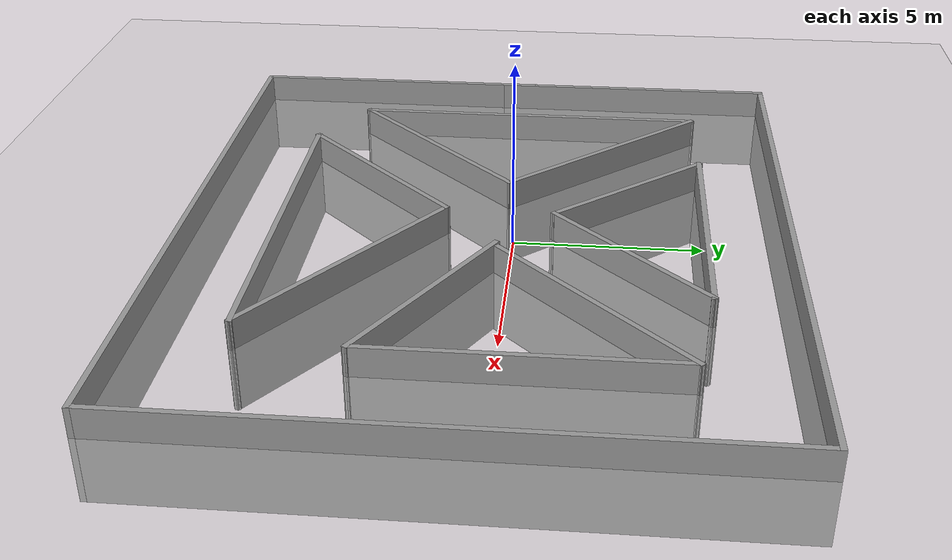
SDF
<sdf version="1.7">
 <world name="default">
  <light name="sun" type="directional">
   <pose>0 0 10 0 -0 0</pose>
   <diffuse>0.8 0.8 0.8 1</diffuse>
   <specular>0.2 0.2 0.2 1</specular>
   <attenuation>
    <range>1000</range>
    <constant>0.9</constant>
    <linear>0.01</linear>
    <quadratic>0.001</quadratic>
   </attenuation>
   <direction>-0.5 0.1 -0.9</direction>
   <spot><inner_angle>0</inner_angle><outer_angle>0</outer_angle><falloff>0</falloff></spot>
  </light>
  <model name="ground_plane">
   <static>1</static>
   <link name="link">
    <collision name="collision">
     <geometry><plane><normal>0 0 1</normal><size>100 100</size></plane></geometry>
     <surface>
      <contact><collide_bitmask>65535</collide_bitmask></contact>
      <friction><ode><mu>100</mu><mu2>50</mu2></ode></friction>
     </surface>
    </collision>
    <visual name="visual">
     <cast_shadows>0</cast_shadows>
     <geometry><plane><normal>0 0 1</normal><size>100 100</size></plane></geometry>
     <material>
      <script><uri>file://media/materials/scripts/gazebo.material</uri><name>Gazebo/Grey</name></script>
     </material>
    </visual>
   </link>
  </model>
  <gravity>0 0 -9.8</gravity>
  <magnetic_field>6e-06 2.3e-05 -4.2e-05</magnetic_field>
  <atmosphere type="adiabatic"/>
  <physics type="ode">
   <max_step_size>0.001</max_step_size>
   <real_time_factor>1</real_time_factor>
   <real_time_update_rate>1000</real_time_update_rate>
  </physics>
  <scene><ambient>0.4 0.4 0.4 1</ambient><background>0.7 0.7 0.7 1</background><shadows>1</shadows></scene>
  <spherical_coordinates>
   <surface_model>EARTH_WGS84</surface_model>
   <latitude_deg>0</latitude_deg>
   <longitude_deg>0</longitude_deg>
   <elevation>0</elevation>
   <heading_deg>0</heading_deg>
  </spherical_coordinates>
  <model name="intersection">
   <pose>-0.004913 -0.704715 -1.73628 0 -0 0</pose>
   <link name="Wall_10">
    <collision name="Wall_10_Collision">
     <geometry><box><size>10 0.15 2.5</size></box></geometry>
     <pose>0 0 1.25 0 -0 0</pose>
    </collision>
    <visual name="Wall_10_Visual">
     <pose>0 0 1.25 0 -0 0</pose>
     <geometry><box><size>10 0.15 2.5</size></box></geometry>
     <material>
      <script><uri>file://media/materials/scripts/gazebo.material</uri><name>Gazebo/Grey</name></script>
      <ambient>1 1 1 1</ambient>
     </material>
     <meta><layer>0</layer></meta>
    </visual>
    <pose>-6.74079 0.702079 0 0 -0 -1.5708</pose>
   </link>
   <link name="Wall_11">
    <collision name="Wall_11_Collision">
     <geometry><box><size>6.75 0.15 2.5</size></box></geometry>
     <pose>0 0 1.25 0 -0 0</pose>
    </collision>
    <visual name="Wall_11_Visual">
     <pose>0 0 1.25 0 -0 0</pose>
     <geometry><box><size>6.75 0.15 2.5</size></box></geometry>
     <material>
      <script><uri>file://media/materials/scripts/gazebo.material</uri><name>Gazebo/Grey</name></script>
      <ambient>1 1 1 1</ambient>
     </material>
     <meta><layer>0</layer></meta>
    </visual>
    <pose>-4.40733 -1.88947 0 0 -0 0.785398</pose>
   </link>
   <link name="Wall_12">
    <collision name="Wall_12_Collision">
     <geometry><box><size>7.12456 0.15 2.5</size></box></geometry>
     <pose>0 0 1.25 0 -0 0</pose>
    </collision>
    <visual name="Wall_12_Visual">
     <pose>0 0 1.25 0 -0 0</pose>
     <geometry><box><size>7.12456 0.15 2.5</size></box></geometry>
     <material>
      <script><uri>file://media/materials/scripts/gazebo.material</uri><name>Gazebo/Grey</name></script>
      <ambient>1 1 1 1</ambient>
     </material>
     <meta><layer>0</layer></meta>
    </visual>
    <pose>-4.40733 3.03553 0 0 -0 2.30384</pose>
   </link>
   <link name="Wall_18">
    <collision name="Wall_18_Collision">
     <geometry><box><size>6.25 0.15 2.5</size></box></geometry>
     <pose>0 0 1.25 0 -0 0</pose>
    </collision>
    <visual name="Wall_18_Visual">
     <pose>0 0 1.25 0 -0 0</pose>
     <geometry><box><size>6.25 0.15 2.5</size></box></geometry>
     <material>
      <script><uri>file://media/materials/scripts/gazebo.material</uri><name>Gazebo/Grey</name></script>
      <ambient>1 1 1 1</ambient>
     </material>
     <meta><layer>0</layer></meta>
    </visual>
    <pose>-2.59808 -3.28738 0 0 -0 -2.35619</pose>
   </link>
   <link name="Wall_19">
    <collision name="Wall_19_Collision">
     <geometry><box><size>10.5 0.15 2.5</size></box></geometry>
     <pose>0 0 1.25 0 -0 0</pose>
    </collision>
    <visual name="Wall_19_Visual">
     <pose>0 0 1.25 0 -0 0</pose>
     <geometry><box><size>10.5 0.15 2.5</size></box></geometry>
     <material>
      <script><uri>file://media/materials/scripts/gazebo.material</uri><name>Gazebo/Grey</name></script>
      <ambient>1 1 1 1</ambient>
     </material>
     <meta><layer>0</layer></meta>
    </visual>
    <pose>0.420249 -5.44406 0 0 -0 0</pose>
   </link>
   <link name="Wall_2">
    <collision name="Wall_2_Collision">
     <geometry><box><size>8.25 0.15 2.5</size></box></geometry>
     <pose>0 0 1.25 0 -0 0</pose>
    </collision>
    <visual name="Wall_2_Visual">
     <pose>0 0 1.25 0 -0 0</pose>
     <geometry><box><size>8.25 0.15 2.5</size></box></geometry>
     <material>
      <script><uri>file://media/materials/scripts/gazebo.material</uri><name>Gazebo/Grey</name></script>
      <ambient>1 1 1 1</ambient>
     </material>
     <meta><layer>0</layer></meta>
    </visual>
    <pose>-9.175 3.875 0 0 -0 1.5708</pose>
   </link>
   <link name="Wall_20">
    <collision name="Wall_20_Collision">
     <geometry><box><size>7.56931 0.15 2.5</size></box></geometry>
     <pose>0 0 1.25 0 -0 0</pose>
    </collision>
    <visual name="Wall_20_Visual">
     <pose>0 0 1.25 0 -0 0</pose>
     <geometry><box><size>7.56931 0.15 2.5</size></box></geometry>
     <material>
      <script><uri>file://media/materials/scripts/gazebo.material</uri><name>Gazebo/Grey</name></script>
      <ambient>1 1 1 1</ambient>
     </material>
     <meta><layer>0</layer></meta>
    </visual>
    <pose>2.57693 -3.28738 0 0 -0 2.52118</pose>
   </link>
   <link name="Wall_26">
    <collision name="Wall_26_Collision">
     <geometry><box><size>6 0.15 2.5</size></box></geometry>
     <pose>0 0 1.25 0 -0 0</pose>
    </collision>
    <visual name="Wall_26_Visual">
     <pose>0 0 1.25 0 -0 0</pose>
     <geometry><box><size>6 0.15 2.5</size></box></geometry>
     <material>
      <script><uri>file://media/materials/scripts/gazebo.material</uri><name>Gazebo/Grey</name></script>
      <ambient>1 1 1 1</ambient>
     </material>
     <meta><layer>0</layer></meta>
    </visual>
    <pose>3.8899 -1.11422 0 0 -0 -0.523599</pose>
   </link>
   <link name="Wall_27">
    <collision name="Wall_27_Collision">
     <geometry><box><size>8 0.15 2.5</size></box></geometry>
     <pose>0 0 1.25 0 -0 0</pose>
    </collision>
    <visual name="Wall_27_Visual">
     <pose>0 0 1.25 0 -0 0</pose>
     <geometry><box><size>8 0.15 2.5</size></box></geometry>
     <material>
      <script><uri>file://media/materials/scripts/gazebo.material</uri><name>Gazebo/Grey</name></script>
      <ambient>1 1 1 1</ambient>
     </material>
     <meta><layer>0</layer></meta>
    </visual>
    <pose>6.42303 1.34828 0 0 -0 1.5708</pose>
   </link>
   <link name="Wall_28">
    <collision name="Wall_28_Collision">
     <geometry><box><size>7 0.15 2.5</size></box></geometry>
     <pose>0 0 1.25 0 -0 0</pose>
    </collision>
    <visual name="Wall_28_Visual">
     <pose>0 0 1.25 0 -0 0</pose>
     <geometry><box><size>7 0.15 2.5</size></box></geometry>
     <material>
      <script><uri>file://media/materials/scripts/gazebo.material</uri><name>Gazebo/Grey</name></script>
      <ambient>1 1 1 1</ambient>
     </material>
     <meta><layer>0</layer></meta>
    </visual>
    <pose>4.00119 2.85144 0 0 -0 -2.35619</pose>
   </link>
   <link name="Wall_3">
    <collision name="Wall_3_Collision">
     <geometry><box><size>18.5 0.15 2.5</size></box></geometry>
     <pose>0 0 1.25 0 -0 0</pose>
    </collision>
    <visual name="Wall_3_Visual">
     <pose>0 0 1.25 0 -0 0</pose>
     <geometry><box><size>18.5 0.15 2.5</size></box></geometry>
     <material>
      <script><uri>file://media/materials/scripts/gazebo.material</uri><name>Gazebo/Grey</name></script>
      <ambient>1 1 1 1</ambient>
     </material>
     <meta><layer>0</layer></meta>
    </visual>
    <pose>0 7.925 0 0 -0 0</pose>
   </link>
   <link name="Wall_31">
    <collision name="Wall_31_Collision">
     <geometry><box><size>7.5 0.15 2.5</size></box></geometry>
     <pose>0 0 1.25 0 -0 0</pose>
    </collision>
    <visual name="Wall_31_Visual">
     <pose>0 0 1.25 0 -0 0</pose>
     <geometry><box><size>7.5 0.15 2.5</size></box></geometry>
     <material>
      <script><uri>file://media/materials/scripts/gazebo.material</uri><name>Gazebo/Grey</name></script>
      <ambient>1 1 1 1</ambient>
     </material>
     <meta><layer>0</layer></meta>
    </visual>
    <pose>-0.065623 5.72887 0 0 -0 0</pose>
   </link>
   <link name="Wall_32">
    <collision name="Wall_32_Collision">
     <geometry><box><size>5.75 0.15 2.5</size></box></geometry>
     <pose>0 0 1.25 0 -0 0</pose>
    </collision>
    <visual name="Wall_32_Visual">
     <pose>0 0 1.25 0 -0 0</pose>
     <geometry><box><size>5.75 0.15 2.5</size></box></geometry>
     <material>
      <script><uri>file://media/materials/scripts/gazebo.material</uri><name>Gazebo/Grey</name></script>
      <ambient>1 1 1 1</ambient>
     </material>
     <meta><layer>0</layer></meta>
    </visual>
    <pose>1.62948 3.74897 0 0 -0 -2.35619</pose>
   </link>
   <link name="Wall_33">
    <collision name="Wall_33_Collision">
     <geometry><box><size>5.36282 0.15 2.5</size></box></geometry>
     <pose>0 0 1.25 0 -0 0</pose>
    </collision>
    <visual name="Wall_33_Visual">
     <pose>0 0 1.25 0 -0 0</pose>
     <geometry><box><size>5.36282 0.15 2.5</size></box></geometry>
     <material>
      <script><uri>file://media/materials/scripts/gazebo.material</uri><name>Gazebo/Grey</name></script>
      <ambient>1 1 1 1</ambient>
     </material>
     <meta><layer>0</layer></meta>
    </visual>
    <pose>-2.04552 3.74897 0 0 -0 2.27885</pose>
   </link>
   <link name="Wall_4">
    <collision name="Wall_4_Collision">
     <geometry><box><size>16 0.15 2.5</size></box></geometry>
     <pose>0 0 1.25 0 -0 0</pose>
    </collision>
    <visual name="Wall_4_Visual">
     <pose>0 0 1.25 0 -0 0</pose>
     <geometry><box><size>16 0.15 2.5</size></box></geometry>
     <material>
      <script><uri>file://media/materials/scripts/gazebo.material</uri><name>Gazebo/Grey</name></script>
      <ambient>1 1 1 1</ambient>
     </material>
     <meta><layer>0</layer></meta>
    </visual>
    <pose>9.175 0 0 0 -0 -1.5708</pose>
   </link>
   <link name="Wall_5">
    <collision name="Wall_5_Collision">
     <geometry><box><size>18.5 0.15 2.5</size></box></geometry>
     <pose>0 0 1.25 0 -0 0</pose>
    </collision>
    <visual name="Wall_5_Visual">
     <pose>0 0 1.25 0 -0 0</pose>
     <geometry><box><size>18.5 0.15 2.5</size></box></geometry>
     <material>
      <script><uri>file://media/materials/scripts/gazebo.material</uri><name>Gazebo/Grey</name></script>
      <ambient>1 1 1 1</ambient>
     </material>
     <meta><layer>0</layer></meta>
    </visual>
    <pose>0 -7.925 0 0 -0 3.14159</pose>
   </link>
   <link name="Wall_6">
    <collision name="Wall_6_Collision">
     <geometry><box><size>8.75 0.15 2.5</size></box></geometry>
     <pose>0 0 1.25 0 -0 0</pose>
    </collision>
    <visual name="Wall_6_Visual">
     <pose>0 0 1.25 0 -0 0</pose>
     <geometry><box><size>8.75 0.15 2.5</size></box></geometry>
     <material>
      <script><uri>file://media/materials/scripts/gazebo.material</uri><name>Gazebo/Grey</name></script>
      <ambient>1 1 1 1</ambient>
     </material>
     <meta><layer>0</layer></meta>
    </visual>
    <pose>-9.175 -3.625 0 0 -0 1.5708</pose>
   </link>
   <static>1</static>
  </model>
 </world>
</sdf>
